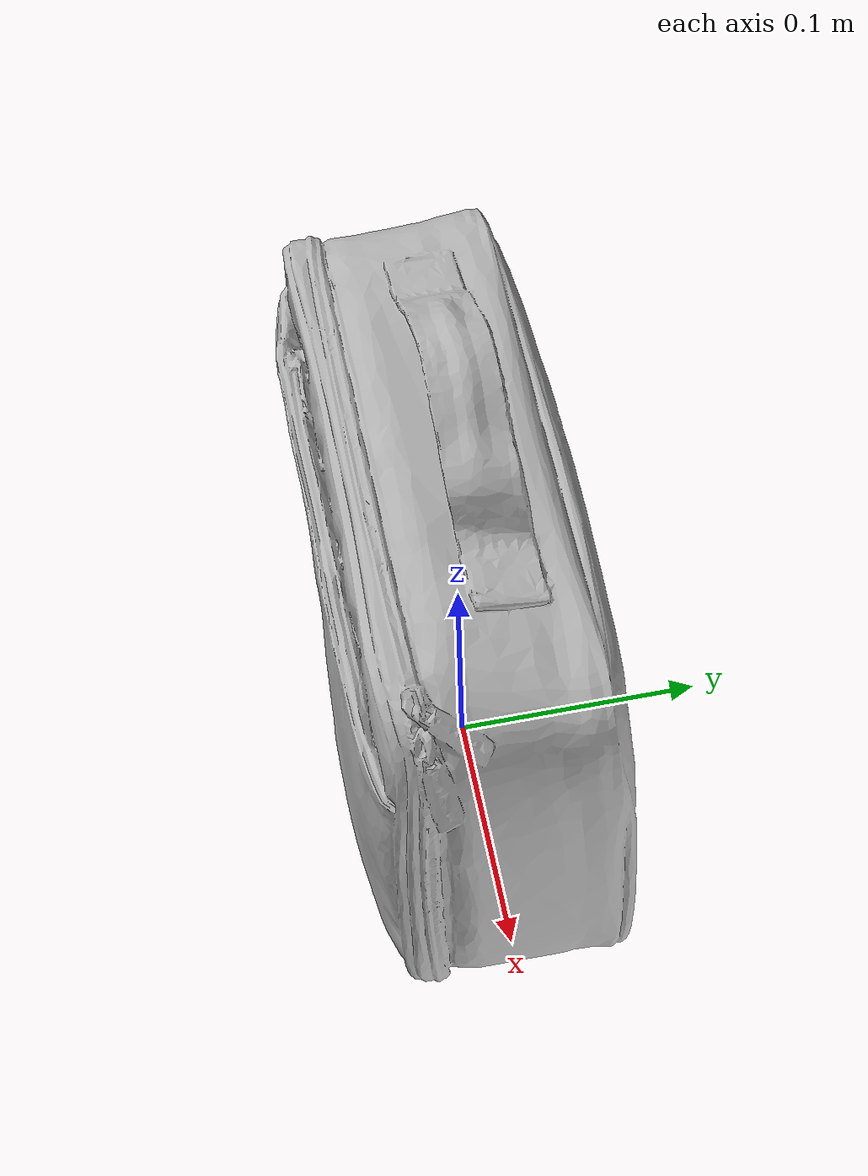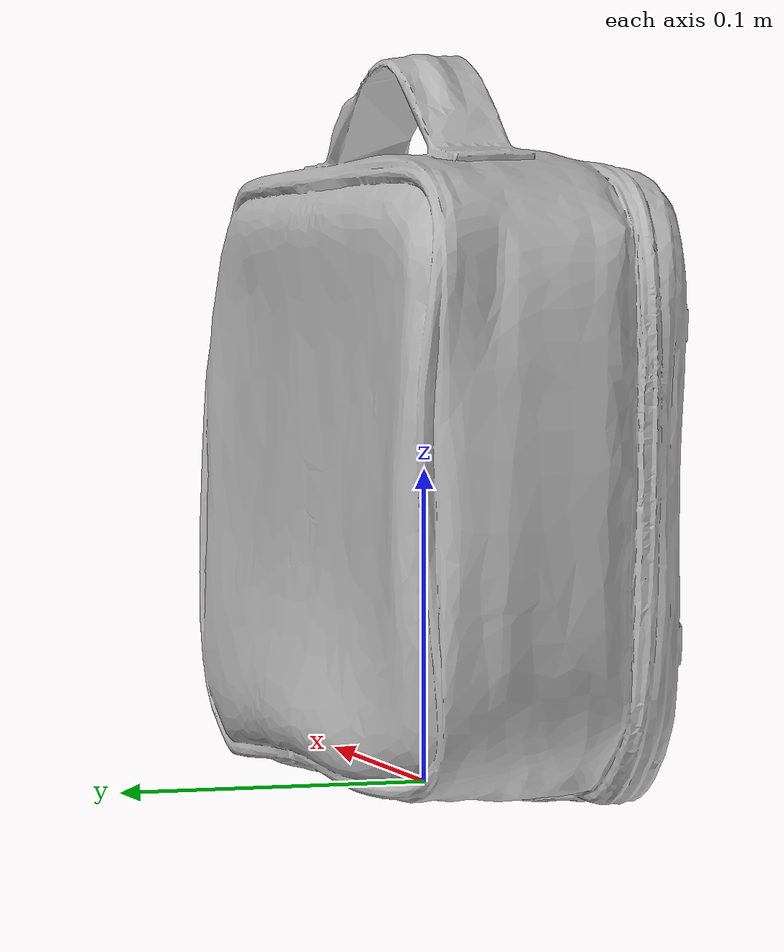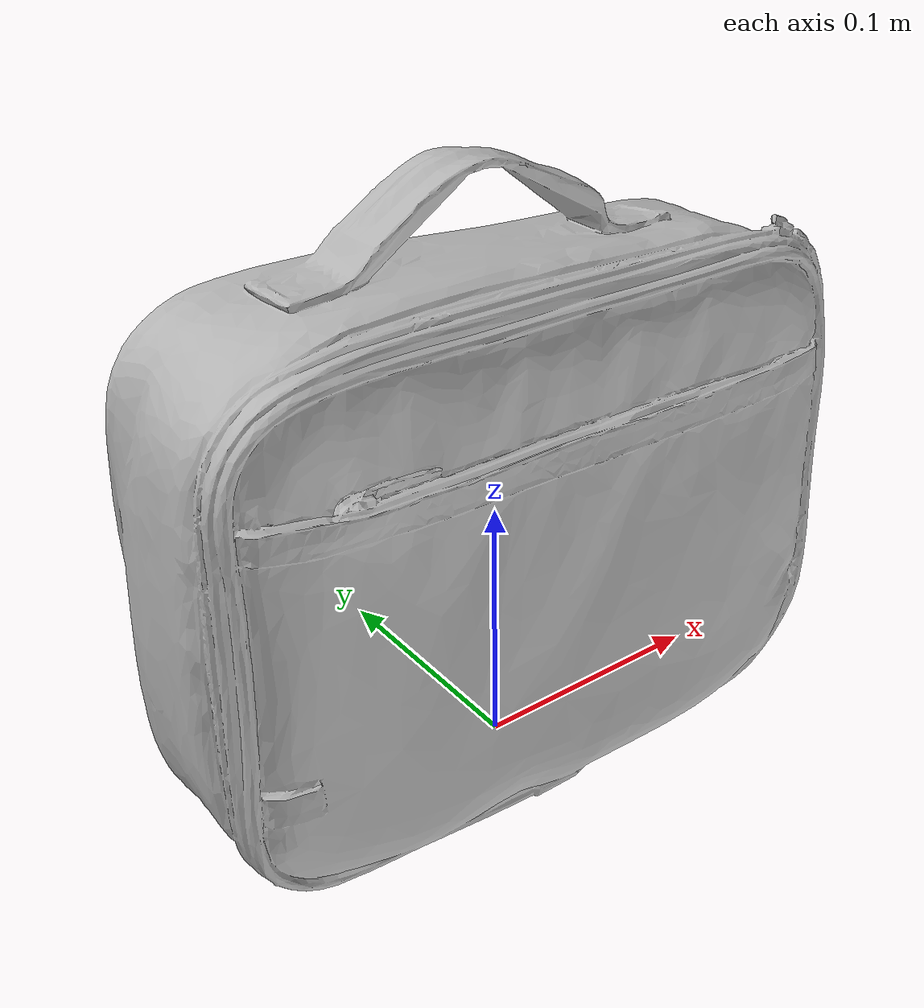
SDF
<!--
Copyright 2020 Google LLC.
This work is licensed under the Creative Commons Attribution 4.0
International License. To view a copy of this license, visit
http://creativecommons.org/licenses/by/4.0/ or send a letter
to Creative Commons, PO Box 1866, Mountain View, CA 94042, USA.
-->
<?xml version="1.0" ?>
<sdf version="1.6">
  <model name="Paul_Frank_Dot_Lunch_Box">
    <link name="link_0">
      <visual name="visual">
        <geometry>
          <mesh>
            <uri>meshes/model.obj</uri>
          </mesh>
        </geometry>
      </visual>
      <collision name="collision_0">
        <geometry>
          <mesh>
            <uri>meshes/model.obj</uri>
          </mesh>
        </geometry>
      </collision>
    </link>
  </model>
</sdf>
